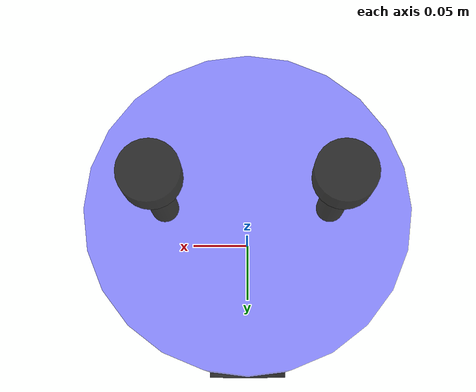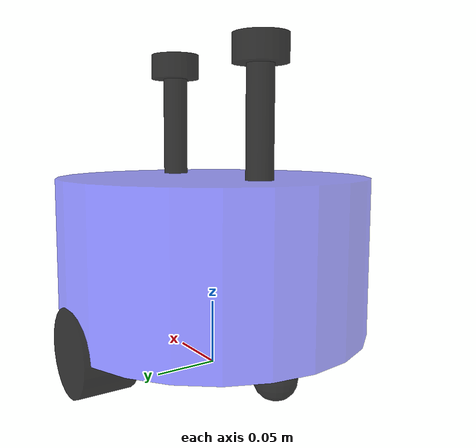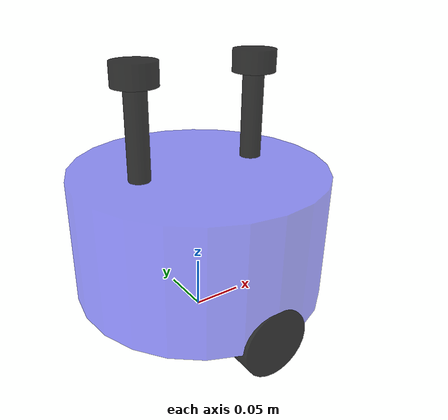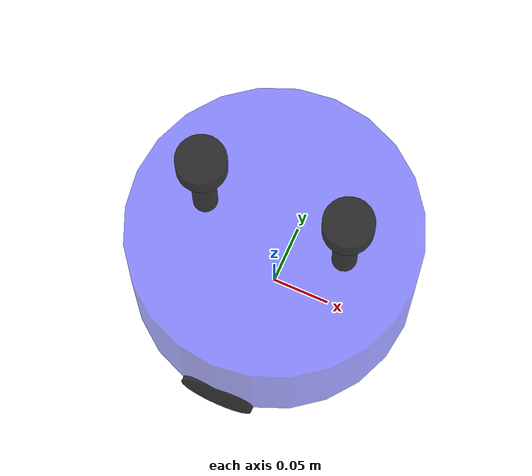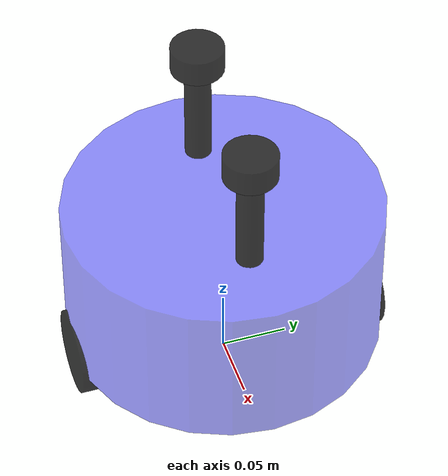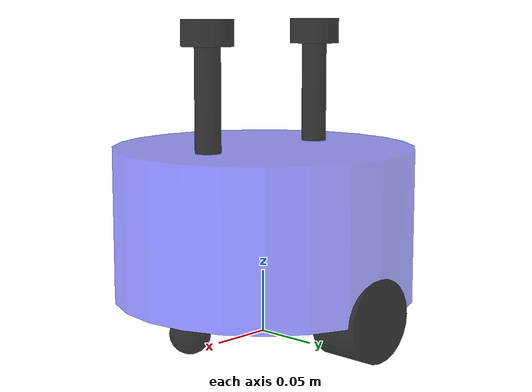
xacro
<?xml version="1.0"?>
<robot xmlns:xacro="http://www.ros.org/wiki/xacro" name="robot">
    <xacro:include filename="$(find two_scan)/urdf/robot/base.urdf.xacro" />
    <!-- 传感器组件 -->
    <xacro:include filename="$(find two_scan)/urdf/robot/sensor/laser.urdf.xacro" />
     <!-- 执行器组件 -->
    <xacro:include filename="$(find two_scan)/urdf/robot/actuator/wheel.urdf.xacro" />
    <xacro:include filename="$(find two_scan)/urdf/robot/actuator/caster.urdf.xacro" />

    <xacro:base_xacro length="0.12" radius="0.1" />
    <!-- 传感器 -->
    <xacro:laser_xacro laser_name="scan_left" xyz="-0.06 0 0.10" />
    <xacro:laser_xacro laser_name="scan_right" xyz="0.06 0 0.10" />
    <!-- 执行器主动轮+从动轮 -->
    <xacro:wheel_xacro wheel_name="left" xyz="0 0.10 -0.06" />
    <xacro:wheel_xacro wheel_name="right" xyz="0 -0.10 -0.06" />
    <xacro:caster_xacro caster_name="front" xyz="0.08 0.0 -0.076" />
    <xacro:caster_xacro caster_name="back" xyz="-0.08 0.0 -0.076" />
    <!-- Gazebo 插件 -->
    <xacro:include filename="$(find two_scan)/urdf/robot/plugins/gazebo_control_plugin.xacro" />
    <xacro:gazebo_control_plugin/>
    <xacro:include filename="$(find two_scan)/urdf/robot/plugins/gazebo_sensor_plugin.xacro" />
    <xacro:gazebo_sensor_plugin />
</robot>

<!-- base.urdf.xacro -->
<robot xmlns:xacro="http://www.ros.org/wiki/xacro">
   <xacro:include filename="$(find two_scan)/urdf/robot/common_inertia.xacro" />
    <xacro:macro name="base_xacro" params="length radius">
     <link name="base_footprint" />

        <joint name="base_joint" type="fixed">
            <parent link="base_footprint" />
            <child link="base_link" />
            <origin xyz="0.0 0.0 ${length/2.0+0.032-0.001}" rpy="0 0 0" />
        </joint>

        <link name="base_link">
            <visual>
                <origin xyz="0 0 0.0" rpy="0 0 0" />
                <geometry>
                    <cylinder length="${length}" radius="${length}" />
                </geometry>
                <material name="blue">
                    <color rgba="0.1 0.1 1.0 0.5"/>
                </material>
            </visual>
            <collision>
                <origin xyz="0 0 0.0" rpy="0 0 0" />
                <geometry>
                    <cylinder length="${length}" radius="${length}" />
                </geometry>
                <material name="blue">
                    <color rgba="0.1 0.1 1.0 0.5"/>
                </material>
            </collision>
            <xacro:cylinder_inertia m="1.0" r="${radius}" h="${length}"/>
        </link>

    </xacro:macro>

</robot>

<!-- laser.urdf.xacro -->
<robot xmlns:xacro="http://www.ros.org/wiki/xacro">
   <xacro:include filename="$(find two_scan)/urdf/robot/common_inertia.xacro" />
    <xacro:macro name="laser_xacro" params="laser_name xyz">
        <gazebo reference="${laser_name}_laser_cylinder_link">
            <material>Gazebo/Black</material>
        </gazebo>
        <gazebo reference="${laser_name}_laser_link">
            <material>Gazebo/Black</material>
        </gazebo>

        <!-- ============雷达支撑杆================ -->
        <link name="${laser_name}_laser_cylinder_link">
            <visual>
                <origin xyz="0 0 0" rpy="0 0 0" />
                <geometry>
                    <cylinder length="0.10" radius="0.01" />
                </geometry>
                <material name="black">
                    <color rgba="0.0 0.0 0.0 0.8" />
                </material>
            </visual>
            <collision>
                <origin xyz="0 0 0" rpy="0 0 0" />
                <geometry>
                    <cylinder length="0.10" radius="0.01" />
                </geometry>
                <material name="black">
                    <color rgba="0.0 0.0 0.0 0.8" />
                </material>
            </collision>
            <xacro:cylinder_inertia m="0.01" r="0.01" h="0.10" />
        </link>

        <joint name="${laser_name}_laser_cylinder_joint" type="fixed">
            <parent link="base_link" />
            <child link="${laser_name}_laser_cylinder_link" />
            <origin xyz="${xyz}" />
        </joint>
        <!-- ============雷达================ -->
        <link name="${laser_name}_laser_link">
            <visual>
                <origin xyz="0 0 0" rpy="0 0 0" />
                <geometry>
                    <cylinder length="0.02" radius="0.02" />
                </geometry>
                <material name="black">
                    <color rgba="0.0 0.0 0.0 0.8" />
                </material>
            </visual>
            <collision>
                <origin xyz="0 0 0" rpy="0 0 0" />
                <geometry>
                    <cylinder length="0.02" radius="0.02" />
                </geometry>
                <material name="black">
                    <color rgba="0.0 0.0 0.0 0.8" />
                </material>
            </collision>
            <xacro:cylinder_inertia m="0.03" r="0.02" h="0.02" />
        </link>

        <joint name="${laser_name}_laser_joint" type="fixed">
            <parent link="${laser_name}_laser_cylinder_link" />
            <child link="${laser_name}_laser_link" />
            <origin xyz="0 0 0.05" />
        </joint>

    </xacro:macro>

</robot>

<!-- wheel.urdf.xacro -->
<robot xmlns:xacro="http://www.ros.org/wiki/xacro">
   <xacro:include filename="$(find two_scan)/urdf/robot/common_inertia.xacro" />
    <xacro:macro name="wheel_xacro" params="wheel_name xyz">
        <link name="${wheel_name}_wheel_link">
            <visual>
                <origin xyz="0 0 0" rpy="1.57079 0 0" />
                <geometry>
                    <cylinder length="0.04" radius="0.032" />
                </geometry>
                <material name="black">
                    <color rgba="0.0 0.0 0.0 0.8"/>
                </material>
            </visual>
            <collision>
                <origin xyz="0 0 0" rpy="1.57079 0 0" />
                <geometry>
                    <cylinder length="0.04" radius="0.032" />
                </geometry>
                <material name="black">
                    <color rgba="0.0 0.0 0.0 0.8"/>
                </material>
            </collision>
            <xacro:cylinder_inertia m="0.1" h="0.04" r="0.032"/>
        </link>
        <gazebo reference="${wheel_name}_wheel_link">
            <mu1 value="20.0" />
            <mu2 value="20.0" />
            <kp value="1000000000.0" />
            <kd value="1.0" />
        </gazebo>

        <joint name="${wheel_name}_wheel_joint" type="continuous">
            <parent link="base_link" />
            <child link="${wheel_name}_wheel_link" />
            <origin xyz="${xyz}" />
            <axis xyz="0 1 0" />
        </joint>
    </xacro:macro>
</robot>

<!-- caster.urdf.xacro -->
<robot xmlns:xacro="http://www.ros.org/wiki/xacro">
   <xacro:include filename="$(find two_scan)/urdf/robot/common_inertia.xacro" />
    <xacro:macro name="caster_xacro" params="caster_name xyz">
        <link name="${caster_name}_caster_link">
            <visual>
                <origin xyz="0 0 0" rpy="0 0 0" />
                <geometry>
                    <sphere radius="0.016" />
                </geometry>
                <material name="black">
                    <color rgba="0.0 0.0 0.0 0.8"/>
                </material>
            </visual>
            <collision>
                <origin xyz="0 0 0" rpy="0 0 0" />
                <geometry>
                    <sphere radius="0.016" />
                </geometry>
                <material name="black">
                    <color rgba="0.0 0.0 0.0 0.8"/>
                </material>
            </collision>
            <xacro:sphere_inertia m="0.01" r="0.016" />
        </link>
        <gazebo reference="${caster_name}_caster_link">
            <mu1 value="0.0" />
            <mu2 value="0.0" />
            <kp value="1000000000.0" />
            <kd value="1.0" />
        </gazebo>

        <joint name="${caster_name}_caster_joint" type="fixed">
            <parent link="base_link" />
            <child link="${caster_name}_caster_link" />
            <origin xyz="${xyz}" />
            <axis xyz="0 0 0" />
        </joint>

    </xacro:macro>
</robot>
